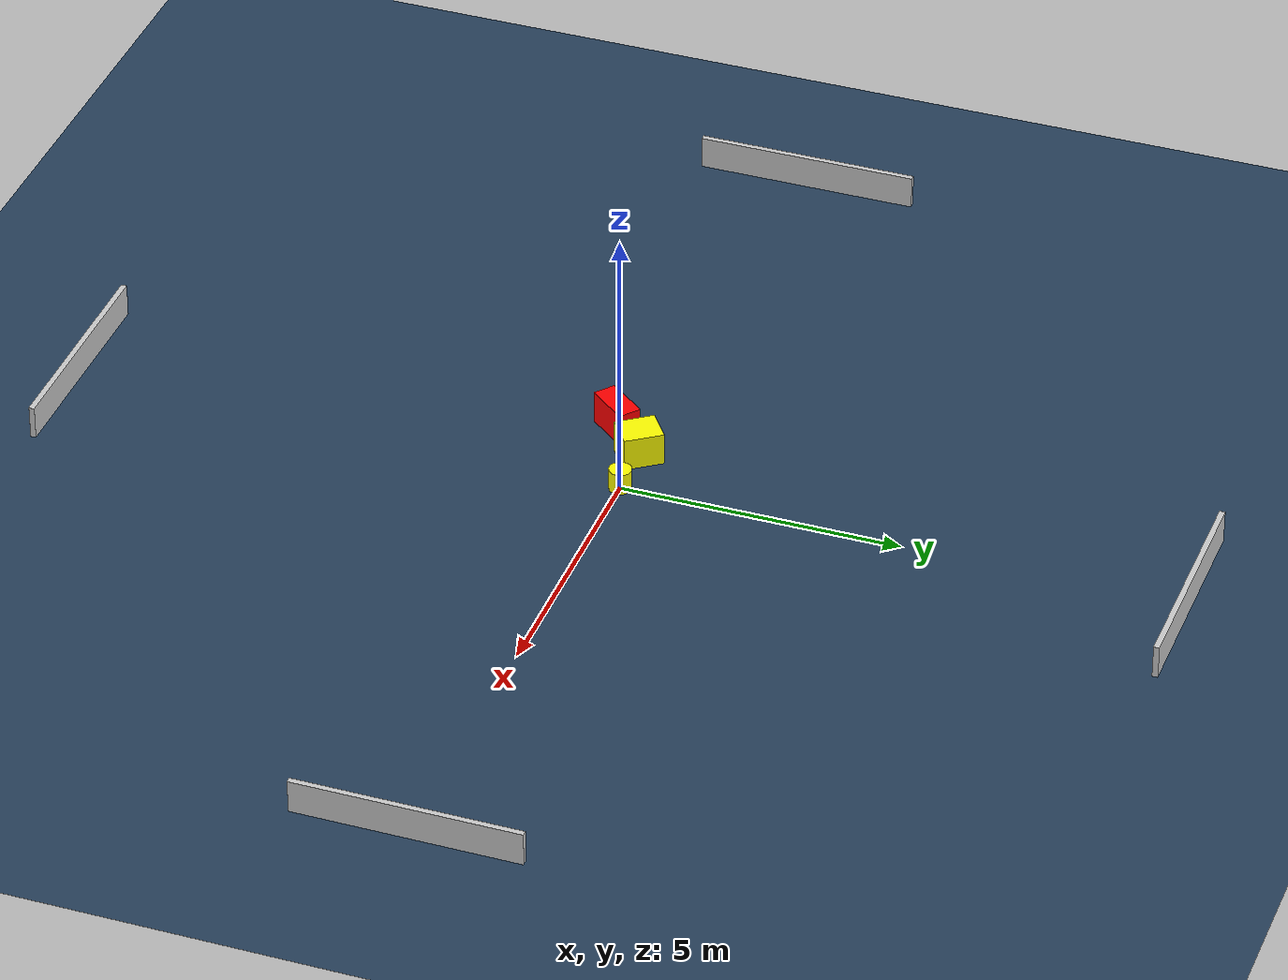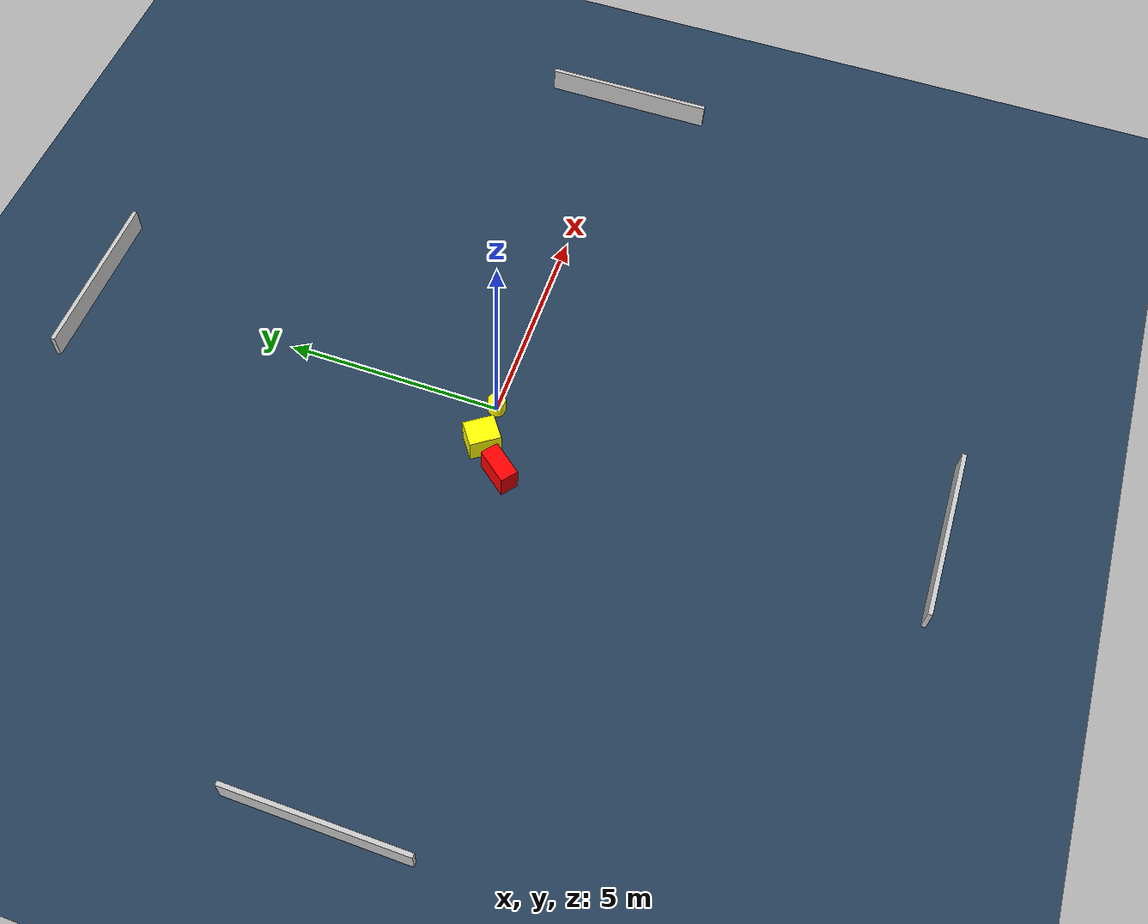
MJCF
<?xml version="1.0" ?>
<mujoco model="generated_environment">
  <option timestep="0.01" integrator="RK4" cone="elliptic"/>
  <default>
    <geom density="1"/>
  </default>
  <asset>
    <texture builtin="gradient" height="3072" name="skybox" rgb1="0.3 0.5 0.7" rgb2="0 0 0" type="skybox" width="512"/>
    <texture builtin="checker" height="300" name="groundplane" rgb1="0.2 0.3 0.4" rgb2="0.1 0.2 0.3" type="2d" width="300"/>
    <material name="groundplane" reflectance="0.2" texrepeat="5 5" texture="groundplane"/>
  </asset>
  <worldbody>
    <light dir="0 0 -1" directional="true" pos="0 0 1.5"/>
    <geom condim="3" friction="0.5 0.005 0.001" material="groundplane" name="floor" pos="0 0 0" size="0 0 0.05" type="plane"/>
    <body name="walls">
      <geom name="wall_1" condim="4" pos="-10.0 0.0 0.3" rgba="0.800000011920929 0.800000011920929 0.800000011920929 1.0" size="0.05 2.0 0.3" type="box"/>
      <geom name="wall_2" condim="4" pos="10.0 0.0 0.3" rgba="0.800000011920929 0.800000011920929 0.800000011920929 1.0" size="0.05 2.0 0.3" type="box"/>
      <geom name="wall_3" condim="4" pos="0.0 -10.0 0.3" rgba="0.800000011920929 0.800000011920929 0.800000011920929 1.0" size="2.0 0.05 0.3" type="box"/>
      <geom name="wall_4" condim="4" pos="0.0 10.0 0.3" rgba="0.800000011920929 0.800000011920929 0.800000011920929 1.0" size="2.0 0.05 0.3" type="box"/>
    </body>
    <body name="robot">
      <joint name="joint_x" type="slide" pos="0 0 0" axis="1 0 0"/>
      <joint name="joint_y" type="slide" pos="0 0 0" axis="0 1 0"/>
      <geom name="robot" type="cylinder" pos="0.0 0.0 0.2" size="0.2 0.2 0.0" mass="5.0" friction="1.0 0.005 0.0001" condim="4" rgba="1.0 1.0 0.0 1.0"/>
    </body>
    <body name="obstacle_1_movable">
      <geom name="obstacle_1_movable" condim="4" pos="-0.966447522517974 -0.0038117397532514865 0.3" euler="0 0 35.77778046245887" friction="0.0 0.005 0.001" rgba="1.0 1.0 0.0 1.0" size="0.3016676002656563 0.3581448864303969 0.3" type="box" mass="0.1"/>
      <joint type="free"/>
    </body>
    <body name="obstacle_2_static">
      <geom name="obstacle_2_static" condim="4" pos="-1.602257703773557 -0.6362959868190265 0.3" euler="0 0 231.27094389372968" friction="0.0 0.005 0.001" rgba="1.0 0.0 0.0 1.0" size="0.42159054981205724 0.20860398288989862 0.3" type="box"/>
    </body>
  </worldbody>
  <actuator>
    <motor name="actuator_x" joint="joint_x" gear="1" ctrlrange="-1 1"/>
    <motor name="actuator_y" joint="joint_y" gear="1" ctrlrange="-1 1"/>
  </actuator>
</mujoco>
